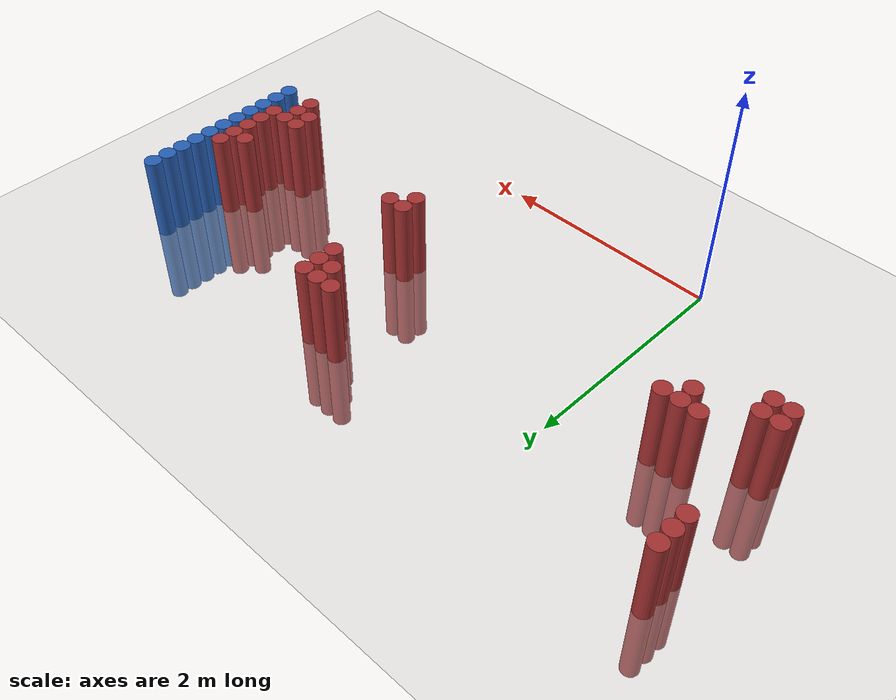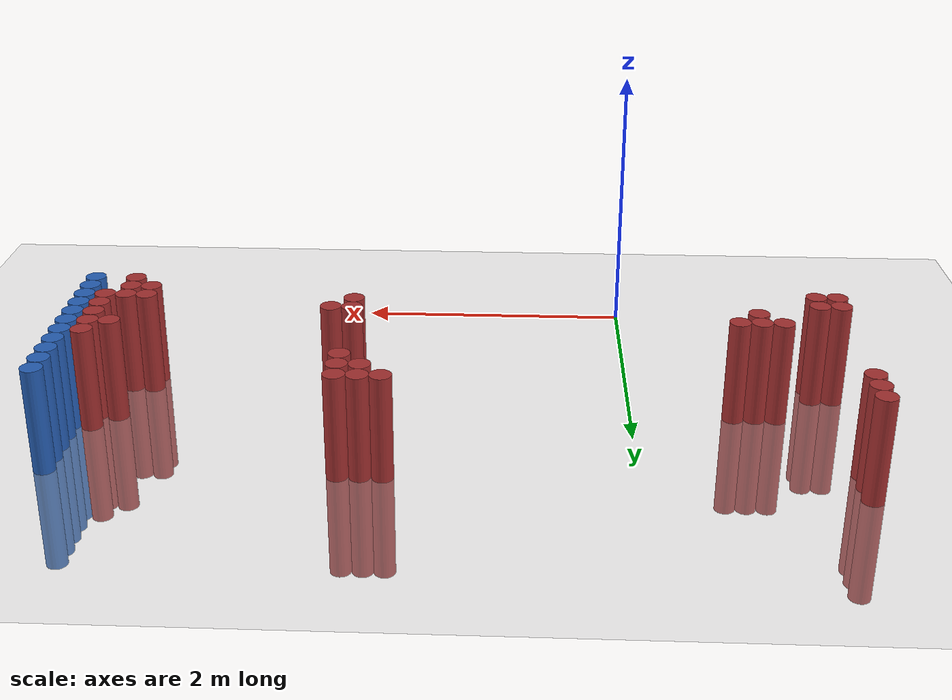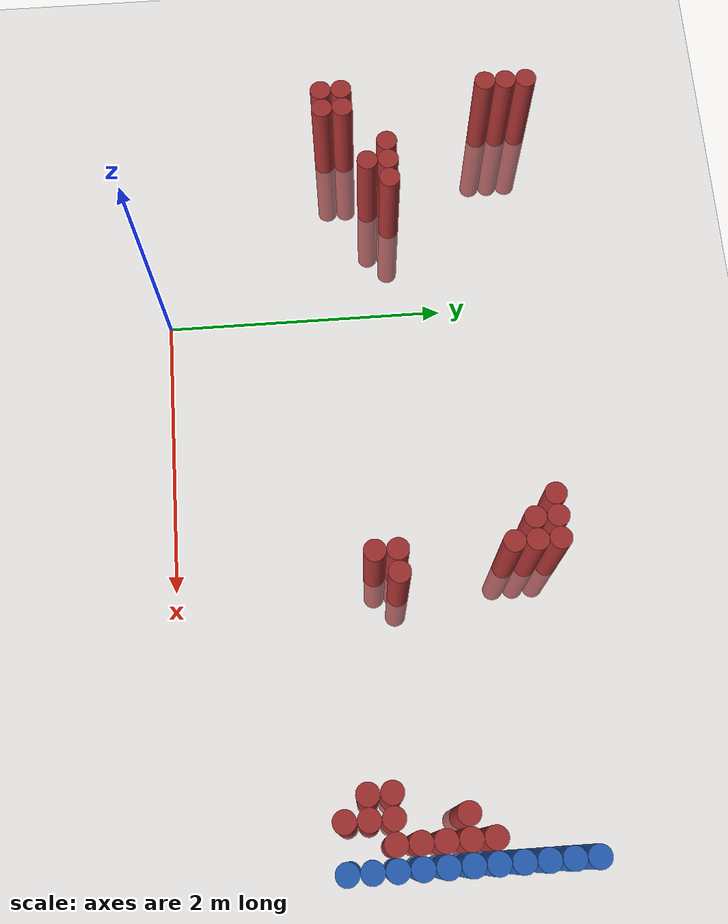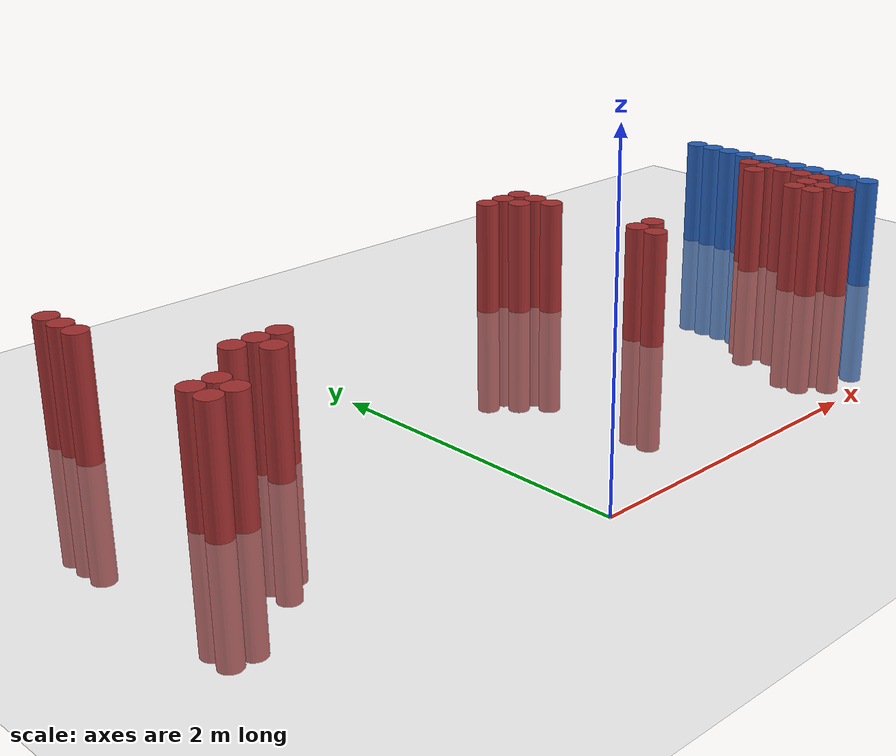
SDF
<sdf version="1.6">
 <world name="default">
  <model name="ground_plane">
   <static>1</static>
   <link name="link">
    <collision name="collision">
     <geometry><plane><normal>0 0 1</normal><size>100 100</size></plane></geometry>
     <surface><friction><ode><mu>100</mu><mu2>50</mu2></ode></friction></surface>
    </collision>
    <visual name="visual">
     <cast_shadows>0</cast_shadows>
     <geometry><plane><normal>0 0 1</normal><size>100 100</size></plane></geometry>
     <material>
      <script><uri>file://media/materials/scripts/gazebo.material</uri><name>Gazebo/Grey</name></script>
     </material>
    </visual>
   </link>
  </model>
  <model name="unit_cylinder_130">
   <static>1</static>
   <pose>3.925000 1.225000 0.000000 0.000000 0.000000 0.000000</pose>
   <link name="link">
    <inertial>
     <mass>1</mass>
     <inertia><ixx>0.145833</ixx><ixy>0</ixy><ixz>0</ixz><iyy>0.145833</iyy><iyz>0</iyz><izz>0.125</izz></inertia>
    </inertial>
    <collision name="collision">
     <geometry><cylinder><radius>0.075000</radius><length>1.5</length></cylinder></geometry>
    </collision>
    <visual name="visual">
     <geometry><cylinder><radius>0.075000</radius><length>1.5</length></cylinder></geometry>
     <material>
      <ambient>0.152000 0.379000 0.720000 1</ambient>
      <diffuse>0.152000 0.379000 0.720000 1</diffuse>
     </material>
     <material>
      <script><name>Gazebo/Grey</name><uri>file://media/materials/scripts/gazebo.material</uri></script>
     </material>
    </visual>
   </link>
  </model>
  <model name="unit_cylinder_132">
   <static>1</static>
   <pose>3.925000 1.375000 0.000000 0.000000 0.000000 0.000000</pose>
   <link name="link">
    <inertial>
     <mass>1</mass>
     <inertia><ixx>0.145833</ixx><ixy>0</ixy><ixz>0</ixz><iyy>0.145833</iyy><iyz>0</iyz><izz>0.125</izz></inertia>
    </inertial>
    <collision name="collision">
     <geometry><cylinder><radius>0.075000</radius><length>1.5</length></cylinder></geometry>
    </collision>
    <visual name="visual">
     <geometry><cylinder><radius>0.075000</radius><length>1.5</length></cylinder></geometry>
     <material>
      <ambient>0.152000 0.379000 0.720000 1</ambient>
      <diffuse>0.152000 0.379000 0.720000 1</diffuse>
     </material>
     <material>
      <script><name>Gazebo/Grey</name><uri>file://media/materials/scripts/gazebo.material</uri></script>
     </material>
    </visual>
   </link>
  </model>
  <model name="unit_cylinder_134">
   <static>1</static>
   <pose>3.925000 1.525000 0.000000 0.000000 0.000000 0.000000</pose>
   <link name="link">
    <inertial>
     <mass>1</mass>
     <inertia><ixx>0.145833</ixx><ixy>0</ixy><ixz>0</ixz><iyy>0.145833</iyy><iyz>0</iyz><izz>0.125</izz></inertia>
    </inertial>
    <collision name="collision">
     <geometry><cylinder><radius>0.075000</radius><length>1.5</length></cylinder></geometry>
    </collision>
    <visual name="visual">
     <geometry><cylinder><radius>0.075000</radius><length>1.5</length></cylinder></geometry>
     <material>
      <ambient>0.152000 0.379000 0.720000 1</ambient>
      <diffuse>0.152000 0.379000 0.720000 1</diffuse>
     </material>
     <material>
      <script><name>Gazebo/Grey</name><uri>file://media/materials/scripts/gazebo.material</uri></script>
     </material>
    </visual>
   </link>
  </model>
  <model name="unit_cylinder_136">
   <static>1</static>
   <pose>3.925000 1.675000 0.000000 0.000000 0.000000 0.000000</pose>
   <link name="link">
    <inertial>
     <mass>1</mass>
     <inertia><ixx>0.145833</ixx><ixy>0</ixy><ixz>0</ixz><iyy>0.145833</iyy><iyz>0</iyz><izz>0.125</izz></inertia>
    </inertial>
    <collision name="collision">
     <geometry><cylinder><radius>0.075000</radius><length>1.5</length></cylinder></geometry>
    </collision>
    <visual name="visual">
     <geometry><cylinder><radius>0.075000</radius><length>1.5</length></cylinder></geometry>
     <material>
      <ambient>0.152000 0.379000 0.720000 1</ambient>
      <diffuse>0.152000 0.379000 0.720000 1</diffuse>
     </material>
     <material>
      <script><name>Gazebo/Grey</name><uri>file://media/materials/scripts/gazebo.material</uri></script>
     </material>
    </visual>
   </link>
  </model>
  <model name="unit_cylinder_138">
   <static>1</static>
   <pose>3.925000 1.825000 0.000000 0.000000 0.000000 0.000000</pose>
   <link name="link">
    <inertial>
     <mass>1</mass>
     <inertia><ixx>0.145833</ixx><ixy>0</ixy><ixz>0</ixz><iyy>0.145833</iyy><iyz>0</iyz><izz>0.125</izz></inertia>
    </inertial>
    <collision name="collision">
     <geometry><cylinder><radius>0.075000</radius><length>1.5</length></cylinder></geometry>
    </collision>
    <visual name="visual">
     <geometry><cylinder><radius>0.075000</radius><length>1.5</length></cylinder></geometry>
     <material>
      <ambient>0.152000 0.379000 0.720000 1</ambient>
      <diffuse>0.152000 0.379000 0.720000 1</diffuse>
     </material>
     <material>
      <script><name>Gazebo/Grey</name><uri>file://media/materials/scripts/gazebo.material</uri></script>
     </material>
    </visual>
   </link>
  </model>
  <model name="unit_cylinder_140">
   <static>1</static>
   <pose>3.925000 1.975000 0.000000 0.000000 0.000000 0.000000</pose>
   <link name="link">
    <inertial>
     <mass>1</mass>
     <inertia><ixx>0.145833</ixx><ixy>0</ixy><ixz>0</ixz><iyy>0.145833</iyy><iyz>0</iyz><izz>0.125</izz></inertia>
    </inertial>
    <collision name="collision">
     <geometry><cylinder><radius>0.075000</radius><length>1.5</length></cylinder></geometry>
    </collision>
    <visual name="visual">
     <geometry><cylinder><radius>0.075000</radius><length>1.5</length></cylinder></geometry>
     <material>
      <ambient>0.152000 0.379000 0.720000 1</ambient>
      <diffuse>0.152000 0.379000 0.720000 1</diffuse>
     </material>
     <material>
      <script><name>Gazebo/Grey</name><uri>file://media/materials/scripts/gazebo.material</uri></script>
     </material>
    </visual>
   </link>
  </model>
  <model name="unit_cylinder_142">
   <static>1</static>
   <pose>3.925000 2.125000 0.000000 0.000000 0.000000 0.000000</pose>
   <link name="link">
    <inertial>
     <mass>1</mass>
     <inertia><ixx>0.145833</ixx><ixy>0</ixy><ixz>0</ixz><iyy>0.145833</iyy><iyz>0</iyz><izz>0.125</izz></inertia>
    </inertial>
    <collision name="collision">
     <geometry><cylinder><radius>0.075000</radius><length>1.5</length></cylinder></geometry>
    </collision>
    <visual name="visual">
     <geometry><cylinder><radius>0.075000</radius><length>1.5</length></cylinder></geometry>
     <material>
      <ambient>0.152000 0.379000 0.720000 1</ambient>
      <diffuse>0.152000 0.379000 0.720000 1</diffuse>
     </material>
     <material>
      <script><name>Gazebo/Grey</name><uri>file://media/materials/scripts/gazebo.material</uri></script>
     </material>
    </visual>
   </link>
  </model>
  <model name="unit_cylinder_144">
   <static>1</static>
   <pose>3.925000 2.275000 0.000000 0.000000 0.000000 0.000000</pose>
   <link name="link">
    <inertial>
     <mass>1</mass>
     <inertia><ixx>0.145833</ixx><ixy>0</ixy><ixz>0</ixz><iyy>0.145833</iyy><iyz>0</iyz><izz>0.125</izz></inertia>
    </inertial>
    <collision name="collision">
     <geometry><cylinder><radius>0.075000</radius><length>1.5</length></cylinder></geometry>
    </collision>
    <visual name="visual">
     <geometry><cylinder><radius>0.075000</radius><length>1.5</length></cylinder></geometry>
     <material>
      <ambient>0.152000 0.379000 0.720000 1</ambient>
      <diffuse>0.152000 0.379000 0.720000 1</diffuse>
     </material>
     <material>
      <script><name>Gazebo/Grey</name><uri>file://media/materials/scripts/gazebo.material</uri></script>
     </material>
    </visual>
   </link>
  </model>
  <model name="unit_cylinder_146">
   <static>1</static>
   <pose>3.925000 2.425000 0.000000 0.000000 0.000000 0.000000</pose>
   <link name="link">
    <inertial>
     <mass>1</mass>
     <inertia><ixx>0.145833</ixx><ixy>0</ixy><ixz>0</ixz><iyy>0.145833</iyy><iyz>0</iyz><izz>0.125</izz></inertia>
    </inertial>
    <collision name="collision">
     <geometry><cylinder><radius>0.075000</radius><length>1.5</length></cylinder></geometry>
    </collision>
    <visual name="visual">
     <geometry><cylinder><radius>0.075000</radius><length>1.5</length></cylinder></geometry>
     <material>
      <ambient>0.152000 0.379000 0.720000 1</ambient>
      <diffuse>0.152000 0.379000 0.720000 1</diffuse>
     </material>
     <material>
      <script><name>Gazebo/Grey</name><uri>file://media/materials/scripts/gazebo.material</uri></script>
     </material>
    </visual>
   </link>
  </model>
  <model name="unit_cylinder_148">
   <static>1</static>
   <pose>3.925000 2.575000 0.000000 0.000000 0.000000 0.000000</pose>
   <link name="link">
    <inertial>
     <mass>1</mass>
     <inertia><ixx>0.145833</ixx><ixy>0</ixy><ixz>0</ixz><iyy>0.145833</iyy><iyz>0</iyz><izz>0.125</izz></inertia>
    </inertial>
    <collision name="collision">
     <geometry><cylinder><radius>0.075000</radius><length>1.5</length></cylinder></geometry>
    </collision>
    <visual name="visual">
     <geometry><cylinder><radius>0.075000</radius><length>1.5</length></cylinder></geometry>
     <material>
      <ambient>0.152000 0.379000 0.720000 1</ambient>
      <diffuse>0.152000 0.379000 0.720000 1</diffuse>
     </material>
     <material>
      <script><name>Gazebo/Grey</name><uri>file://media/materials/scripts/gazebo.material</uri></script>
     </material>
    </visual>
   </link>
  </model>
  <model name="unit_cylinder_340">
   <static>1</static>
   <pose>-1.475000 1.225000 0.000000 0.000000 0.000000 0.000000</pose>
   <link name="link">
    <inertial>
     <mass>1</mass>
     <inertia><ixx>0.145833</ixx><ixy>0</ixy><ixz>0</ixz><iyy>0.145833</iyy><iyz>0</iyz><izz>0.125</izz></inertia>
    </inertial>
    <collision name="collision">
     <geometry><cylinder><radius>0.075000</radius><length>1.5</length></cylinder></geometry>
    </collision>
    <visual name="visual">
     <geometry><cylinder><radius>0.075000</radius><length>1.5</length></cylinder></geometry>
     <material>
      <ambient>0.648000 0.192000 0.192000 1</ambient>
      <diffuse>0.648000 0.192000 0.192000 1</diffuse>
     </material>
     <material>
      <script><name>Gazebo/Grey</name><uri>file://media/materials/scripts/gazebo.material</uri></script>
     </material>
    </visual>
   </link>
  </model>
  <model name="unit_cylinder_341">
   <static>1</static>
   <pose>-1.475000 1.375000 0.000000 0.000000 0.000000 0.000000</pose>
   <link name="link">
    <inertial>
     <mass>1</mass>
     <inertia><ixx>0.145833</ixx><ixy>0</ixy><ixz>0</ixz><iyy>0.145833</iyy><iyz>0</iyz><izz>0.125</izz></inertia>
    </inertial>
    <collision name="collision">
     <geometry><cylinder><radius>0.075000</radius><length>1.5</length></cylinder></geometry>
    </collision>
    <visual name="visual">
     <geometry><cylinder><radius>0.075000</radius><length>1.5</length></cylinder></geometry>
     <material>
      <ambient>0.648000 0.192000 0.192000 1</ambient>
      <diffuse>0.648000 0.192000 0.192000 1</diffuse>
     </material>
     <material>
      <script><name>Gazebo/Grey</name><uri>file://media/materials/scripts/gazebo.material</uri></script>
     </material>
    </visual>
   </link>
  </model>
  <model name="unit_cylinder_342">
   <static>1</static>
   <pose>-1.475000 2.425000 0.000000 0.000000 0.000000 0.000000</pose>
   <link name="link">
    <inertial>
     <mass>1</mass>
     <inertia><ixx>0.145833</ixx><ixy>0</ixy><ixz>0</ixz><iyy>0.145833</iyy><iyz>0</iyz><izz>0.125</izz></inertia>
    </inertial>
    <collision name="collision">
     <geometry><cylinder><radius>0.075000</radius><length>1.5</length></cylinder></geometry>
    </collision>
    <visual name="visual">
     <geometry><cylinder><radius>0.075000</radius><length>1.5</length></cylinder></geometry>
     <material>
      <ambient>0.648000 0.192000 0.192000 1</ambient>
      <diffuse>0.648000 0.192000 0.192000 1</diffuse>
     </material>
     <material>
      <script><name>Gazebo/Grey</name><uri>file://media/materials/scripts/gazebo.material</uri></script>
     </material>
    </visual>
   </link>
  </model>
  <model name="unit_cylinder_343">
   <static>1</static>
   <pose>-1.475000 2.575000 0.000000 0.000000 0.000000 0.000000</pose>
   <link name="link">
    <inertial>
     <mass>1</mass>
     <inertia><ixx>0.145833</ixx><ixy>0</ixy><ixz>0</ixz><iyy>0.145833</iyy><iyz>0</iyz><izz>0.125</izz></inertia>
    </inertial>
    <collision name="collision">
     <geometry><cylinder><radius>0.075000</radius><length>1.5</length></cylinder></geometry>
    </collision>
    <visual name="visual">
     <geometry><cylinder><radius>0.075000</radius><length>1.5</length></cylinder></geometry>
     <material>
      <ambient>0.648000 0.192000 0.192000 1</ambient>
      <diffuse>0.648000 0.192000 0.192000 1</diffuse>
     </material>
     <material>
      <script><name>Gazebo/Grey</name><uri>file://media/materials/scripts/gazebo.material</uri></script>
     </material>
    </visual>
   </link>
  </model>
  <model name="unit_cylinder_344">
   <static>1</static>
   <pose>-1.475000 2.725000 0.000000 0.000000 0.000000 0.000000</pose>
   <link name="link">
    <inertial>
     <mass>1</mass>
     <inertia><ixx>0.145833</ixx><ixy>0</ixy><ixz>0</ixz><iyy>0.145833</iyy><iyz>0</iyz><izz>0.125</izz></inertia>
    </inertial>
    <collision name="collision">
     <geometry><cylinder><radius>0.075000</radius><length>1.5</length></cylinder></geometry>
    </collision>
    <visual name="visual">
     <geometry><cylinder><radius>0.075000</radius><length>1.5</length></cylinder></geometry>
     <material>
      <ambient>0.648000 0.192000 0.192000 1</ambient>
      <diffuse>0.648000 0.192000 0.192000 1</diffuse>
     </material>
     <material>
      <script><name>Gazebo/Grey</name><uri>file://media/materials/scripts/gazebo.material</uri></script>
     </material>
    </visual>
   </link>
  </model>
  <model name="unit_cylinder_346">
   <static>1</static>
   <pose>-1.325000 1.225000 0.000000 0.000000 0.000000 0.000000</pose>
   <link name="link">
    <inertial>
     <mass>1</mass>
     <inertia><ixx>0.145833</ixx><ixy>0</ixy><ixz>0</ixz><iyy>0.145833</iyy><iyz>0</iyz><izz>0.125</izz></inertia>
    </inertial>
    <collision name="collision">
     <geometry><cylinder><radius>0.075000</radius><length>1.5</length></cylinder></geometry>
    </collision>
    <visual name="visual">
     <geometry><cylinder><radius>0.075000</radius><length>1.5</length></cylinder></geometry>
     <material>
      <ambient>0.648000 0.192000 0.192000 1</ambient>
      <diffuse>0.648000 0.192000 0.192000 1</diffuse>
     </material>
     <material>
      <script><name>Gazebo/Grey</name><uri>file://media/materials/scripts/gazebo.material</uri></script>
     </material>
    </visual>
   </link>
  </model>
  <model name="unit_cylinder_347">
   <static>1</static>
   <pose>-1.325000 1.375000 0.000000 0.000000 0.000000 0.000000</pose>
   <link name="link">
    <inertial>
     <mass>1</mass>
     <inertia><ixx>0.145833</ixx><ixy>0</ixy><ixz>0</ixz><iyy>0.145833</iyy><iyz>0</iyz><izz>0.125</izz></inertia>
    </inertial>
    <collision name="collision">
     <geometry><cylinder><radius>0.075000</radius><length>1.5</length></cylinder></geometry>
    </collision>
    <visual name="visual">
     <geometry><cylinder><radius>0.075000</radius><length>1.5</length></cylinder></geometry>
     <material>
      <ambient>0.648000 0.192000 0.192000 1</ambient>
      <diffuse>0.648000 0.192000 0.192000 1</diffuse>
     </material>
     <material>
      <script><name>Gazebo/Grey</name><uri>file://media/materials/scripts/gazebo.material</uri></script>
     </material>
    </visual>
   </link>
  </model>
  <model name="unit_cylinder_353">
   <static>1</static>
   <pose>-1.025000 1.675000 0.000000 0.000000 0.000000 0.000000</pose>
   <link name="link">
    <inertial>
     <mass>1</mass>
     <inertia><ixx>0.145833</ixx><ixy>0</ixy><ixz>0</ixz><iyy>0.145833</iyy><iyz>0</iyz><izz>0.125</izz></inertia>
    </inertial>
    <collision name="collision">
     <geometry><cylinder><radius>0.075000</radius><length>1.5</length></cylinder></geometry>
    </collision>
    <visual name="visual">
     <geometry><cylinder><radius>0.075000</radius><length>1.5</length></cylinder></geometry>
     <material>
      <ambient>0.648000 0.192000 0.192000 1</ambient>
      <diffuse>0.648000 0.192000 0.192000 1</diffuse>
     </material>
     <material>
      <script><name>Gazebo/Grey</name><uri>file://media/materials/scripts/gazebo.material</uri></script>
     </material>
    </visual>
   </link>
  </model>
  <model name="unit_cylinder_357">
   <static>1</static>
   <pose>-0.875000 1.525000 0.000000 0.000000 0.000000 0.000000</pose>
   <link name="link">
    <inertial>
     <mass>1</mass>
     <inertia><ixx>0.145833</ixx><ixy>0</ixy><ixz>0</ixz><iyy>0.145833</iyy><iyz>0</iyz><izz>0.125</izz></inertia>
    </inertial>
    <collision name="collision">
     <geometry><cylinder><radius>0.075000</radius><length>1.5</length></cylinder></geometry>
    </collision>
    <visual name="visual">
     <geometry><cylinder><radius>0.075000</radius><length>1.5</length></cylinder></geometry>
     <material>
      <ambient>0.648000 0.192000 0.192000 1</ambient>
      <diffuse>0.648000 0.192000 0.192000 1</diffuse>
     </material>
     <material>
      <script><name>Gazebo/Grey</name><uri>file://media/materials/scripts/gazebo.material</uri></script>
     </material>
    </visual>
   </link>
  </model>
  <model name="unit_cylinder_358">
   <static>1</static>
   <pose>-0.875000 1.675000 0.000000 0.000000 0.000000 0.000000</pose>
   <link name="link">
    <inertial>
     <mass>1</mass>
     <inertia><ixx>0.145833</ixx><ixy>0</ixy><ixz>0</ixz><iyy>0.145833</iyy><iyz>0</iyz><izz>0.125</izz></inertia>
    </inertial>
    <collision name="collision">
     <geometry><cylinder><radius>0.075000</radius><length>1.5</length></cylinder></geometry>
    </collision>
    <visual name="visual">
     <geometry><cylinder><radius>0.075000</radius><length>1.5</length></cylinder></geometry>
     <material>
      <ambient>0.648000 0.192000 0.192000 1</ambient>
      <diffuse>0.648000 0.192000 0.192000 1</diffuse>
     </material>
     <material>
      <script><name>Gazebo/Grey</name><uri>file://media/materials/scripts/gazebo.material</uri></script>
     </material>
    </visual>
   </link>
  </model>
  <model name="unit_cylinder_362">
   <static>1</static>
   <pose>-0.725000 1.675000 0.000000 0.000000 0.000000 0.000000</pose>
   <link name="link">
    <inertial>
     <mass>1</mass>
     <inertia><ixx>0.145833</ixx><ixy>0</ixy><ixz>0</ixz><iyy>0.145833</iyy><iyz>0</iyz><izz>0.125</izz></inertia>
    </inertial>
    <collision name="collision">
     <geometry><cylinder><radius>0.075000</radius><length>1.5</length></cylinder></geometry>
    </collision>
    <visual name="visual">
     <geometry><cylinder><radius>0.075000</radius><length>1.5</length></cylinder></geometry>
     <material>
      <ambient>0.648000 0.192000 0.192000 1</ambient>
      <diffuse>0.648000 0.192000 0.192000 1</diffuse>
     </material>
     <material>
      <script><name>Gazebo/Grey</name><uri>file://media/materials/scripts/gazebo.material</uri></script>
     </material>
    </visual>
   </link>
  </model>
  <model name="unit_cylinder_392">
   <static>1</static>
   <pose>1.675000 2.575000 0.000000 0.000000 0.000000 0.000000</pose>
   <link name="link">
    <inertial>
     <mass>1</mass>
     <inertia><ixx>0.145833</ixx><ixy>0</ixy><ixz>0</ixz><iyy>0.145833</iyy><iyz>0</iyz><izz>0.125</izz></inertia>
    </inertial>
    <collision name="collision">
     <geometry><cylinder><radius>0.075000</radius><length>1.5</length></cylinder></geometry>
    </collision>
    <visual name="visual">
     <geometry><cylinder><radius>0.075000</radius><length>1.5</length></cylinder></geometry>
     <material>
      <ambient>0.648000 0.192000 0.192000 1</ambient>
      <diffuse>0.648000 0.192000 0.192000 1</diffuse>
     </material>
     <material>
      <script><name>Gazebo/Grey</name><uri>file://media/materials/scripts/gazebo.material</uri></script>
     </material>
    </visual>
   </link>
  </model>
  <model name="unit_cylinder_394">
   <static>1</static>
   <pose>1.825000 2.425000 0.000000 0.000000 0.000000 0.000000</pose>
   <link name="link">
    <inertial>
     <mass>1</mass>
     <inertia><ixx>0.145833</ixx><ixy>0</ixy><ixz>0</ixz><iyy>0.145833</iyy><iyz>0</iyz><izz>0.125</izz></inertia>
    </inertial>
    <collision name="collision">
     <geometry><cylinder><radius>0.075000</radius><length>1.5</length></cylinder></geometry>
    </collision>
    <visual name="visual">
     <geometry><cylinder><radius>0.075000</radius><length>1.5</length></cylinder></geometry>
     <material>
      <ambient>0.648000 0.192000 0.192000 1</ambient>
      <diffuse>0.648000 0.192000 0.192000 1</diffuse>
     </material>
     <material>
      <script><name>Gazebo/Grey</name><uri>file://media/materials/scripts/gazebo.material</uri></script>
     </material>
    </visual>
   </link>
  </model>
  <model name="unit_cylinder_395">
   <static>1</static>
   <pose>1.825000 2.575000 0.000000 0.000000 0.000000 0.000000</pose>
   <link name="link">
    <inertial>
     <mass>1</mass>
     <inertia><ixx>0.145833</ixx><ixy>0</ixy><ixz>0</ixz><iyy>0.145833</iyy><iyz>0</iyz><izz>0.125</izz></inertia>
    </inertial>
    <collision name="collision">
     <geometry><cylinder><radius>0.075000</radius><length>1.5</length></cylinder></geometry>
    </collision>
    <visual name="visual">
     <geometry><cylinder><radius>0.075000</radius><length>1.5</length></cylinder></geometry>
     <material>
      <ambient>0.648000 0.192000 0.192000 1</ambient>
      <diffuse>0.648000 0.192000 0.192000 1</diffuse>
     </material>
     <material>
      <script><name>Gazebo/Grey</name><uri>file://media/materials/scripts/gazebo.material</uri></script>
     </material>
    </visual>
   </link>
  </model>
  <model name="unit_cylinder_399">
   <static>1</static>
   <pose>1.975000 1.375000 0.000000 0.000000 0.000000 0.000000</pose>
   <link name="link">
    <inertial>
     <mass>1</mass>
     <inertia><ixx>0.145833</ixx><ixy>0</ixy><ixz>0</ixz><iyy>0.145833</iyy><iyz>0</iyz><izz>0.125</izz></inertia>
    </inertial>
    <collision name="collision">
     <geometry><cylinder><radius>0.075000</radius><length>1.5</length></cylinder></geometry>
    </collision>
    <visual name="visual">
     <geometry><cylinder><radius>0.075000</radius><length>1.5</length></cylinder></geometry>
     <material>
      <ambient>0.648000 0.192000 0.192000 1</ambient>
      <diffuse>0.648000 0.192000 0.192000 1</diffuse>
     </material>
     <material>
      <script><name>Gazebo/Grey</name><uri>file://media/materials/scripts/gazebo.material</uri></script>
     </material>
    </visual>
   </link>
  </model>
  <model name="unit_cylinder_400">
   <static>1</static>
   <pose>1.975000 1.525000 0.000000 0.000000 0.000000 0.000000</pose>
   <link name="link">
    <inertial>
     <mass>1</mass>
     <inertia><ixx>0.145833</ixx><ixy>0</ixy><ixz>0</ixz><iyy>0.145833</iyy><iyz>0</iyz><izz>0.125</izz></inertia>
    </inertial>
    <collision name="collision">
     <geometry><cylinder><radius>0.075000</radius><length>1.5</length></cylinder></geometry>
    </collision>
    <visual name="visual">
     <geometry><cylinder><radius>0.075000</radius><length>1.5</length></cylinder></geometry>
     <material>
      <ambient>0.648000 0.192000 0.192000 1</ambient>
      <diffuse>0.648000 0.192000 0.192000 1</diffuse>
     </material>
     <material>
      <script><name>Gazebo/Grey</name><uri>file://media/materials/scripts/gazebo.material</uri></script>
     </material>
    </visual>
   </link>
  </model>
  <model name="unit_cylinder_401">
   <static>1</static>
   <pose>1.975000 2.275000 0.000000 0.000000 0.000000 0.000000</pose>
   <link name="link">
    <inertial>
     <mass>1</mass>
     <inertia><ixx>0.145833</ixx><ixy>0</ixy><ixz>0</ixz><iyy>0.145833</iyy><iyz>0</iyz><izz>0.125</izz></inertia>
    </inertial>
    <collision name="collision">
     <geometry><cylinder><radius>0.075000</radius><length>1.5</length></cylinder></geometry>
    </collision>
    <visual name="visual">
     <geometry><cylinder><radius>0.075000</radius><length>1.5</length></cylinder></geometry>
     <material>
      <ambient>0.648000 0.192000 0.192000 1</ambient>
      <diffuse>0.648000 0.192000 0.192000 1</diffuse>
     </material>
     <material>
      <script><name>Gazebo/Grey</name><uri>file://media/materials/scripts/gazebo.material</uri></script>
     </material>
    </visual>
   </link>
  </model>
  <model name="unit_cylinder_402">
   <static>1</static>
   <pose>1.975000 2.425000 0.000000 0.000000 0.000000 0.000000</pose>
   <link name="link">
    <inertial>
     <mass>1</mass>
     <inertia><ixx>0.145833</ixx><ixy>0</ixy><ixz>0</ixz><iyy>0.145833</iyy><iyz>0</iyz><izz>0.125</izz></inertia>
    </inertial>
    <collision name="collision">
     <geometry><cylinder><radius>0.075000</radius><length>1.5</length></cylinder></geometry>
    </collision>
    <visual name="visual">
     <geometry><cylinder><radius>0.075000</radius><length>1.5</length></cylinder></geometry>
     <material>
      <ambient>0.648000 0.192000 0.192000 1</ambient>
      <diffuse>0.648000 0.192000 0.192000 1</diffuse>
     </material>
     <material>
      <script><name>Gazebo/Grey</name><uri>file://media/materials/scripts/gazebo.material</uri></script>
     </material>
    </visual>
   </link>
  </model>
  <model name="unit_cylinder_403">
   <static>1</static>
   <pose>1.975000 2.575000 0.000000 0.000000 0.000000 0.000000</pose>
   <link name="link">
    <inertial>
     <mass>1</mass>
     <inertia><ixx>0.145833</ixx><ixy>0</ixy><ixz>0</ixz><iyy>0.145833</iyy><iyz>0</iyz><izz>0.125</izz></inertia>
    </inertial>
    <collision name="collision">
     <geometry><cylinder><radius>0.075000</radius><length>1.5</length></cylinder></geometry>
    </collision>
    <visual name="visual">
     <geometry><cylinder><radius>0.075000</radius><length>1.5</length></cylinder></geometry>
     <material>
      <ambient>0.648000 0.192000 0.192000 1</ambient>
      <diffuse>0.648000 0.192000 0.192000 1</diffuse>
     </material>
     <material>
      <script><name>Gazebo/Grey</name><uri>file://media/materials/scripts/gazebo.material</uri></script>
     </material>
    </visual>
   </link>
  </model>
  <model name="unit_cylinder_406">
   <static>1</static>
   <pose>2.125000 1.525000 0.000000 0.000000 0.000000 0.000000</pose>
   <link name="link">
    <inertial>
     <mass>1</mass>
     <inertia><ixx>0.145833</ixx><ixy>0</ixy><ixz>0</ixz><iyy>0.145833</iyy><iyz>0</iyz><izz>0.125</izz></inertia>
    </inertial>
    <collision name="collision">
     <geometry><cylinder><radius>0.075000</radius><length>1.5</length></cylinder></geometry>
    </collision>
    <visual name="visual">
     <geometry><cylinder><radius>0.075000</radius><length>1.5</length></cylinder></geometry>
     <material>
      <ambient>0.648000 0.192000 0.192000 1</ambient>
      <diffuse>0.648000 0.192000 0.192000 1</diffuse>
     </material>
     <material>
      <script><name>Gazebo/Grey</name><uri>file://media/materials/scripts/gazebo.material</uri></script>
     </material>
    </visual>
   </link>
  </model>
  <model name="unit_cylinder_446">
   <static>1</static>
   <pose>3.475000 1.225000 0.000000 0.000000 0.000000 0.000000</pose>
   <link name="link">
    <inertial>
     <mass>1</mass>
     <inertia><ixx>0.145833</ixx><ixy>0</ixy><ixz>0</ixz><iyy>0.145833</iyy><iyz>0</iyz><izz>0.125</izz></inertia>
    </inertial>
    <collision name="collision">
     <geometry><cylinder><radius>0.075000</radius><length>1.5</length></cylinder></geometry>
    </collision>
    <visual name="visual">
     <geometry><cylinder><radius>0.075000</radius><length>1.5</length></cylinder></geometry>
     <material>
      <ambient>0.648000 0.192000 0.192000 1</ambient>
      <diffuse>0.648000 0.192000 0.192000 1</diffuse>
     </material>
     <material>
      <script><name>Gazebo/Grey</name><uri>file://media/materials/scripts/gazebo.material</uri></script>
     </material>
    </visual>
   </link>
  </model>
  <model name="unit_cylinder_447">
   <static>1</static>
   <pose>3.475000 1.375000 0.000000 0.000000 0.000000 0.000000</pose>
   <link name="link">
    <inertial>
     <mass>1</mass>
     <inertia><ixx>0.145833</ixx><ixy>0</ixy><ixz>0</ixz><iyy>0.145833</iyy><iyz>0</iyz><izz>0.125</izz></inertia>
    </inertial>
    <collision name="collision">
     <geometry><cylinder><radius>0.075000</radius><length>1.5</length></cylinder></geometry>
    </collision>
    <visual name="visual">
     <geometry><cylinder><radius>0.075000</radius><length>1.5</length></cylinder></geometry>
     <material>
      <ambient>0.648000 0.192000 0.192000 1</ambient>
      <diffuse>0.648000 0.192000 0.192000 1</diffuse>
     </material>
     <material>
      <script><name>Gazebo/Grey</name><uri>file://media/materials/scripts/gazebo.material</uri></script>
     </material>
    </visual>
   </link>
  </model>
  <model name="unit_cylinder_452">
   <static>1</static>
   <pose>3.625000 1.075000 0.000000 0.000000 0.000000 0.000000</pose>
   <link name="link">
    <inertial>
     <mass>1</mass>
     <inertia><ixx>0.145833</ixx><ixy>0</ixy><ixz>0</ixz><iyy>0.145833</iyy><iyz>0</iyz><izz>0.125</izz></inertia>
    </inertial>
    <collision name="collision">
     <geometry><cylinder><radius>0.075000</radius><length>1.5</length></cylinder></geometry>
    </collision>
    <visual name="visual">
     <geometry><cylinder><radius>0.075000</radius><length>1.5</length></cylinder></geometry>
     <material>
      <ambient>0.648000 0.192000 0.192000 1</ambient>
      <diffuse>0.648000 0.192000 0.192000 1</diffuse>
     </material>
     <material>
      <script><name>Gazebo/Grey</name><uri>file://media/materials/scripts/gazebo.material</uri></script>
     </material>
    </visual>
   </link>
  </model>
  <model name="unit_cylinder_453">
   <static>1</static>
   <pose>3.625000 1.225000 0.000000 0.000000 0.000000 0.000000</pose>
   <link name="link">
    <inertial>
     <mass>1</mass>
     <inertia><ixx>0.145833</ixx><ixy>0</ixy><ixz>0</ixz><iyy>0.145833</iyy><iyz>0</iyz><izz>0.125</izz></inertia>
    </inertial>
    <collision name="collision">
     <geometry><cylinder><radius>0.075000</radius><length>1.5</length></cylinder></geometry>
    </collision>
    <visual name="visual">
     <geometry><cylinder><radius>0.075000</radius><length>1.5</length></cylinder></geometry>
     <material>
      <ambient>0.648000 0.192000 0.192000 1</ambient>
      <diffuse>0.648000 0.192000 0.192000 1</diffuse>
     </material>
     <material>
      <script><name>Gazebo/Grey</name><uri>file://media/materials/scripts/gazebo.material</uri></script>
     </material>
    </visual>
   </link>
  </model>
  <model name="unit_cylinder_454">
   <static>1</static>
   <pose>3.625000 1.375000 0.000000 0.000000 0.000000 0.000000</pose>
   <link name="link">
    <inertial>
     <mass>1</mass>
     <inertia><ixx>0.145833</ixx><ixy>0</ixy><ixz>0</ixz><iyy>0.145833</iyy><iyz>0</iyz><izz>0.125</izz></inertia>
    </inertial>
    <collision name="collision">
     <geometry><cylinder><radius>0.075000</radius><length>1.5</length></cylinder></geometry>
    </collision>
    <visual name="visual">
     <geometry><cylinder><radius>0.075000</radius><length>1.5</length></cylinder></geometry>
     <material>
      <ambient>0.648000 0.192000 0.192000 1</ambient>
      <diffuse>0.648000 0.192000 0.192000 1</diffuse>
     </material>
     <material>
      <script><name>Gazebo/Grey</name><uri>file://media/materials/scripts/gazebo.material</uri></script>
     </material>
    </visual>
   </link>
  </model>
  <model name="unit_cylinder_455">
   <static>1</static>
   <pose>3.625000 1.825000 0.000000 0.000000 0.000000 0.000000</pose>
   <link name="link">
    <inertial>
     <mass>1</mass>
     <inertia><ixx>0.145833</ixx><ixy>0</ixy><ixz>0</ixz><iyy>0.145833</iyy><iyz>0</iyz><izz>0.125</izz></inertia>
    </inertial>
    <collision name="collision">
     <geometry><cylinder><radius>0.075000</radius><length>1.5</length></cylinder></geometry>
    </collision>
    <visual name="visual">
     <geometry><cylinder><radius>0.075000</radius><length>1.5</length></cylinder></geometry>
     <material>
      <ambient>0.648000 0.192000 0.192000 1</ambient>
      <diffuse>0.648000 0.192000 0.192000 1</diffuse>
     </material>
     <material>
      <script><name>Gazebo/Grey</name><uri>file://media/materials/scripts/gazebo.material</uri></script>
     </material>
    </visual>
   </link>
  </model>
  <model name="unit_cylinder_462">
   <static>1</static>
   <pose>3.775000 1.375000 0.000000 0.000000 0.000000 0.000000</pose>
   <link name="link">
    <inertial>
     <mass>1</mass>
     <inertia><ixx>0.145833</ixx><ixy>0</ixy><ixz>0</ixz><iyy>0.145833</iyy><iyz>0</iyz><izz>0.125</izz></inertia>
    </inertial>
    <collision name="collision">
     <geometry><cylinder><radius>0.075000</radius><length>1.5</length></cylinder></geometry>
    </collision>
    <visual name="visual">
     <geometry><cylinder><radius>0.075000</radius><length>1.5</length></cylinder></geometry>
     <material>
      <ambient>0.648000 0.192000 0.192000 1</ambient>
      <diffuse>0.648000 0.192000 0.192000 1</diffuse>
     </material>
     <material>
      <script><name>Gazebo/Grey</name><uri>file://media/materials/scripts/gazebo.material</uri></script>
     </material>
    </visual>
   </link>
  </model>
  <model name="unit_cylinder_463">
   <static>1</static>
   <pose>3.775000 1.525000 0.000000 0.000000 0.000000 0.000000</pose>
   <link name="link">
    <inertial>
     <mass>1</mass>
     <inertia><ixx>0.145833</ixx><ixy>0</ixy><ixz>0</ixz><iyy>0.145833</iyy><iyz>0</iyz><izz>0.125</izz></inertia>
    </inertial>
    <collision name="collision">
     <geometry><cylinder><radius>0.075000</radius><length>1.5</length></cylinder></geometry>
    </collision>
    <visual name="visual">
     <geometry><cylinder><radius>0.075000</radius><length>1.5</length></cylinder></geometry>
     <material>
      <ambient>0.648000 0.192000 0.192000 1</ambient>
      <diffuse>0.648000 0.192000 0.192000 1</diffuse>
     </material>
     <material>
      <script><name>Gazebo/Grey</name><uri>file://media/materials/scripts/gazebo.material</uri></script>
     </material>
    </visual>
   </link>
  </model>
  <model name="unit_cylinder_464">
   <static>1</static>
   <pose>3.775000 1.675000 0.000000 0.000000 0.000000 0.000000</pose>
   <link name="link">
    <inertial>
     <mass>1</mass>
     <inertia><ixx>0.145833</ixx><ixy>0</ixy><ixz>0</ixz><iyy>0.145833</iyy><iyz>0</iyz><izz>0.125</izz></inertia>
    </inertial>
    <collision name="collision">
     <geometry><cylinder><radius>0.075000</radius><length>1.5</length></cylinder></geometry>
    </collision>
    <visual name="visual">
     <geometry><cylinder><radius>0.075000</radius><length>1.5</length></cylinder></geometry>
     <material>
      <ambient>0.648000 0.192000 0.192000 1</ambient>
      <diffuse>0.648000 0.192000 0.192000 1</diffuse>
     </material>
     <material>
      <script><name>Gazebo/Grey</name><uri>file://media/materials/scripts/gazebo.material</uri></script>
     </material>
    </visual>
   </link>
  </model>
  <model name="unit_cylinder_465">
   <static>1</static>
   <pose>3.775000 1.825000 0.000000 0.000000 0.000000 0.000000</pose>
   <link name="link">
    <inertial>
     <mass>1</mass>
     <inertia><ixx>0.145833</ixx><ixy>0</ixy><ixz>0</ixz><iyy>0.145833</iyy><iyz>0</iyz><izz>0.125</izz></inertia>
    </inertial>
    <collision name="collision">
     <geometry><cylinder><radius>0.075000</radius><length>1.5</length></cylinder></geometry>
    </collision>
    <visual name="visual">
     <geometry><cylinder><radius>0.075000</radius><length>1.5</length></cylinder></geometry>
     <material>
      <ambient>0.648000 0.192000 0.192000 1</ambient>
      <diffuse>0.648000 0.192000 0.192000 1</diffuse>
     </material>
     <material>
      <script><name>Gazebo/Grey</name><uri>file://media/materials/scripts/gazebo.material</uri></script>
     </material>
    </visual>
   </link>
  </model>
  <model name="unit_cylinder_466">
   <static>1</static>
   <pose>3.775000 1.975000 0.000000 0.000000 0.000000 0.000000</pose>
   <link name="link">
    <inertial>
     <mass>1</mass>
     <inertia><ixx>0.145833</ixx><ixy>0</ixy><ixz>0</ixz><iyy>0.145833</iyy><iyz>0</iyz><izz>0.125</izz></inertia>
    </inertial>
    <collision name="collision">
     <geometry><cylinder><radius>0.075000</radius><length>1.5</length></cylinder></geometry>
    </collision>
    <visual name="visual">
     <geometry><cylinder><radius>0.075000</radius><length>1.5</length></cylinder></geometry>
     <material>
      <ambient>0.648000 0.192000 0.192000 1</ambient>
      <diffuse>0.648000 0.192000 0.192000 1</diffuse>
     </material>
     <material>
      <script><name>Gazebo/Grey</name><uri>file://media/materials/scripts/gazebo.material</uri></script>
     </material>
    </visual>
   </link>
  </model>
  <model name="unit_cylinder_489">
   <static>1</static>
   <pose>3.925000 1.075000 0.000000 0.000000 0.000000 0.000000</pose>
   <link name="link">
    <inertial>
     <mass>1</mass>
     <inertia><ixx>0.145833</ixx><ixy>0</ixy><ixz>0</ixz><iyy>0.145833</iyy><iyz>0</iyz><izz>0.125</izz></inertia>
    </inertial>
    <collision name="collision">
     <geometry><cylinder><radius>0.075000</radius><length>1.5</length></cylinder></geometry>
    </collision>
    <visual name="visual">
     <geometry><cylinder><radius>0.075000</radius><length>1.5</length></cylinder></geometry>
     <material>
      <ambient>0.152000 0.379000 0.720000 1</ambient>
      <diffuse>0.152000 0.379000 0.720000 1</diffuse>
     </material>
     <material>
      <script><name>Gazebo/Grey</name><uri>file://media/materials/scripts/gazebo.material</uri></script>
     </material>
    </visual>
   </link>
  </model>
  <model name="unit_cylinder_490">
   <static>1</static>
   <pose>3.925000 1.225000 0.000000 0.000000 0.000000 0.000000</pose>
   <link name="link">
    <inertial>
     <mass>1</mass>
     <inertia><ixx>0.145833</ixx><ixy>0</ixy><ixz>0</ixz><iyy>0.145833</iyy><iyz>0</iyz><izz>0.125</izz></inertia>
    </inertial>
    <collision name="collision">
     <geometry><cylinder><radius>0.075000</radius><length>1.5</length></cylinder></geometry>
    </collision>
    <visual name="visual">
     <geometry><cylinder><radius>0.075000</radius><length>1.5</length></cylinder></geometry>
     <material>
      <ambient>0.152000 0.379000 0.720000 1</ambient>
      <diffuse>0.152000 0.379000 0.720000 1</diffuse>
     </material>
     <material>
      <script><name>Gazebo/Grey</name><uri>file://media/materials/scripts/gazebo.material</uri></script>
     </material>
    </visual>
   </link>
  </model>
  <model name="unit_cylinder_491">
   <static>1</static>
   <pose>3.925000 1.375000 0.000000 0.000000 0.000000 0.000000</pose>
   <link name="link">
    <inertial>
     <mass>1</mass>
     <inertia><ixx>0.145833</ixx><ixy>0</ixy><ixz>0</ixz><iyy>0.145833</iyy><iyz>0</iyz><izz>0.125</izz></inertia>
    </inertial>
    <collision name="collision">
     <geometry><cylinder><radius>0.075000</radius><length>1.5</length></cylinder></geometry>
    </collision>
    <visual name="visual">
     <geometry><cylinder><radius>0.075000</radius><length>1.5</length></cylinder></geometry>
     <material>
      <ambient>0.152000 0.379000 0.720000 1</ambient>
      <diffuse>0.152000 0.379000 0.720000 1</diffuse>
     </material>
     <material>
      <script><name>Gazebo/Grey</name><uri>file://media/materials/scripts/gazebo.material</uri></script>
     </material>
    </visual>
   </link>
  </model>
  <model name="unit_cylinder_492">
   <static>1</static>
   <pose>3.925000 1.525000 0.000000 0.000000 0.000000 0.000000</pose>
   <link name="link">
    <inertial>
     <mass>1</mass>
     <inertia><ixx>0.145833</ixx><ixy>0</ixy><ixz>0</ixz><iyy>0.145833</iyy><iyz>0</iyz><izz>0.125</izz></inertia>
    </inertial>
    <collision name="collision">
     <geometry><cylinder><radius>0.075000</radius><length>1.5</length></cylinder></geometry>
    </collision>
    <visual name="visual">
     <geometry><cylinder><radius>0.075000</radius><length>1.5</length></cylinder></geometry>
     <material>
      <ambient>0.152000 0.379000 0.720000 1</ambient>
      <diffuse>0.152000 0.379000 0.720000 1</diffuse>
     </material>
     <material>
      <script><name>Gazebo/Grey</name><uri>file://media/materials/scripts/gazebo.material</uri></script>
     </material>
    </visual>
   </link>
  </model>
  <model name="unit_cylinder_493">
   <static>1</static>
   <pose>3.925000 1.675000 0.000000 0.000000 0.000000 0.000000</pose>
   <link name="link">
    <inertial>
     <mass>1</mass>
     <inertia><ixx>0.145833</ixx><ixy>0</ixy><ixz>0</ixz><iyy>0.145833</iyy><iyz>0</iyz><izz>0.125</izz></inertia>
    </inertial>
    <collision name="collision">
     <geometry><cylinder><radius>0.075000</radius><length>1.5</length></cylinder></geometry>
    </collision>
    <visual name="visual">
     <geometry><cylinder><radius>0.075000</radius><length>1.5</length></cylinder></geometry>
     <material>
      <ambient>0.152000 0.379000 0.720000 1</ambient>
      <diffuse>0.152000 0.379000 0.720000 1</diffuse>
     </material>
     <material>
      <script><name>Gazebo/Grey</name><uri>file://media/materials/scripts/gazebo.material</uri></script>
     </material>
    </visual>
   </link>
  </model>
  <model name="unit_cylinder_494">
   <static>1</static>
   <pose>3.925000 1.825000 0.000000 0.000000 0.000000 0.000000</pose>
   <link name="link">
    <inertial>
     <mass>1</mass>
     <inertia><ixx>0.145833</ixx><ixy>0</ixy><ixz>0</ixz><iyy>0.145833</iyy><iyz>0</iyz><izz>0.125</izz></inertia>
    </inertial>
    <collision name="collision">
     <geometry><cylinder><radius>0.075000</radius><length>1.5</length></cylinder></geometry>
    </collision>
    <visual name="visual">
     <geometry><cylinder><radius>0.075000</radius><length>1.5</length></cylinder></geometry>
     <material>
      <ambient>0.152000 0.379000 0.720000 1</ambient>
      <diffuse>0.152000 0.379000 0.720000 1</diffuse>
     </material>
     <material>
      <script><name>Gazebo/Grey</name><uri>file://media/materials/scripts/gazebo.material</uri></script>
     </material>
    </visual>
   </link>
  </model>
  <model name="unit_cylinder_495">
   <static>1</static>
   <pose>3.925000 1.975000 0.000000 0.000000 0.000000 0.000000</pose>
   <link name="link">
    <inertial>
     <mass>1</mass>
     <inertia><ixx>0.145833</ixx><ixy>0</ixy><ixz>0</ixz><iyy>0.145833</iyy><iyz>0</iyz><izz>0.125</izz></inertia>
    </inertial>
    <collision name="collision">
     <geometry><cylinder><radius>0.075000</radius><length>1.5</length></cylinder></geometry>
    </collision>
    <visual name="visual">
     <geometry><cylinder><radius>0.075000</radius><length>1.5</length></cylinder></geometry>
     <material>
      <ambient>0.152000 0.379000 0.720000 1</ambient>
      <diffuse>0.152000 0.379000 0.720000 1</diffuse>
     </material>
     <material>
      <script><name>Gazebo/Grey</name><uri>file://media/materials/scripts/gazebo.material</uri></script>
     </material>
    </visual>
   </link>
  </model>
  <model name="unit_cylinder_496">
   <static>1</static>
   <pose>3.925000 2.125000 0.000000 0.000000 0.000000 0.000000</pose>
   <link name="link">
    <inertial>
     <mass>1</mass>
     <inertia><ixx>0.145833</ixx><ixy>0</ixy><ixz>0</ixz><iyy>0.145833</iyy><iyz>0</iyz><izz>0.125</izz></inertia>
    </inertial>
    <collision name="collision">
     <geometry><cylinder><radius>0.075000</radius><length>1.5</length></cylinder></geometry>
    </collision>
    <visual name="visual">
     <geometry><cylinder><radius>0.075000</radius><length>1.5</length></cylinder></geometry>
     <material>
      <ambient>0.152000 0.379000 0.720000 1</ambient>
      <diffuse>0.152000 0.379000 0.720000 1</diffuse>
     </material>
     <material>
      <script><name>Gazebo/Grey</name><uri>file://media/materials/scripts/gazebo.material</uri></script>
     </material>
    </visual>
   </link>
  </model>
  <model name="unit_cylinder_497">
   <static>1</static>
   <pose>3.925000 2.275000 0.000000 0.000000 0.000000 0.000000</pose>
   <link name="link">
    <inertial>
     <mass>1</mass>
     <inertia><ixx>0.145833</ixx><ixy>0</ixy><ixz>0</ixz><iyy>0.145833</iyy><iyz>0</iyz><izz>0.125</izz></inertia>
    </inertial>
    <collision name="collision">
     <geometry><cylinder><radius>0.075000</radius><length>1.5</length></cylinder></geometry>
    </collision>
    <visual name="visual">
     <geometry><cylinder><radius>0.075000</radius><length>1.5</length></cylinder></geometry>
     <material>
      <ambient>0.152000 0.379000 0.720000 1</ambient>
      <diffuse>0.152000 0.379000 0.720000 1</diffuse>
     </material>
     <material>
      <script><name>Gazebo/Grey</name><uri>file://media/materials/scripts/gazebo.material</uri></script>
     </material>
    </visual>
   </link>
  </model>
  <model name="unit_cylinder_498">
   <static>1</static>
   <pose>3.925000 2.425000 0.000000 0.000000 0.000000 0.000000</pose>
   <link name="link">
    <inertial>
     <mass>1</mass>
     <inertia><ixx>0.145833</ixx><ixy>0</ixy><ixz>0</ixz><iyy>0.145833</iyy><iyz>0</iyz><izz>0.125</izz></inertia>
    </inertial>
    <collision name="collision">
     <geometry><cylinder><radius>0.075000</radius><length>1.5</length></cylinder></geometry>
    </collision>
    <visual name="visual">
     <geometry><cylinder><radius>0.075000</radius><length>1.5</length></cylinder></geometry>
     <material>
      <ambient>0.152000 0.379000 0.720000 1</ambient>
      <diffuse>0.152000 0.379000 0.720000 1</diffuse>
     </material>
     <material>
      <script><name>Gazebo/Grey</name><uri>file://media/materials/scripts/gazebo.material</uri></script>
     </material>
    </visual>
   </link>
  </model>
  <model name="unit_cylinder_499">
   <static>1</static>
   <pose>3.925000 2.575000 0.000000 0.000000 0.000000 0.000000</pose>
   <link name="link">
    <inertial>
     <mass>1</mass>
     <inertia><ixx>0.145833</ixx><ixy>0</ixy><ixz>0</ixz><iyy>0.145833</iyy><iyz>0</iyz><izz>0.125</izz></inertia>
    </inertial>
    <collision name="collision">
     <geometry><cylinder><radius>0.075000</radius><length>1.5</length></cylinder></geometry>
    </collision>
    <visual name="visual">
     <geometry><cylinder><radius>0.075000</radius><length>1.5</length></cylinder></geometry>
     <material>
      <ambient>0.152000 0.379000 0.720000 1</ambient>
      <diffuse>0.152000 0.379000 0.720000 1</diffuse>
     </material>
     <material>
      <script><name>Gazebo/Grey</name><uri>file://media/materials/scripts/gazebo.material</uri></script>
     </material>
    </visual>
   </link>
  </model>
 </world>
</sdf>
